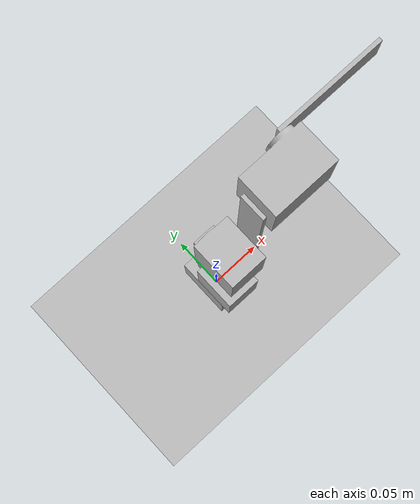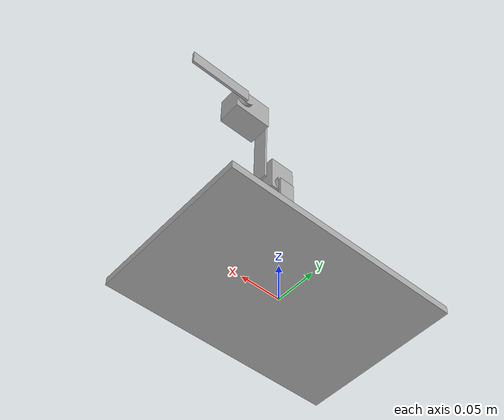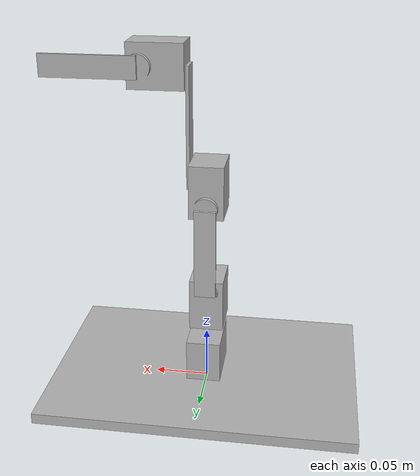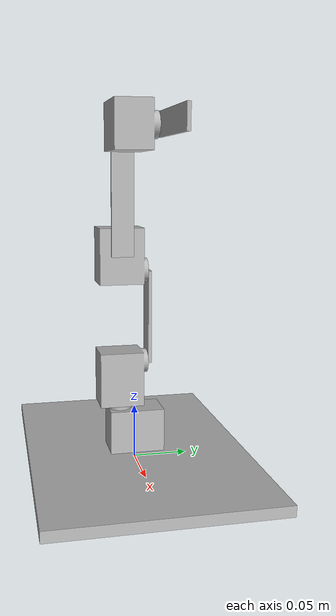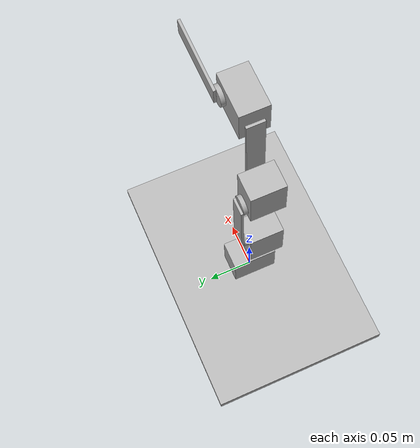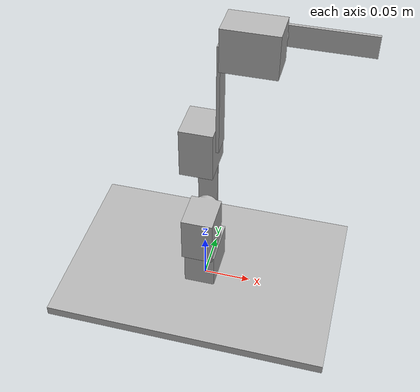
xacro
<?xml version="1.0" ?>
<robot name="murari" xmlns:xacro="http://www.ros.org/wiki/xacro">

<xacro:include filename="$(find murari_description)/urdf/materials.xacro" />
<xacro:include filename="$(find murari_description)/urdf/murari.trans" />
<xacro:include filename="$(find murari_description)/urdf/murari.gazebo" />
<link name="base_link">
  <inertial>
    <origin xyz="0.0 0.0 0.005" rpy="0 0 0"/>
    <mass value="4.553"/>
    <inertia ixx="0.015215" iyy="0.031947" izz="0.047086" ixy="0.0" iyz="0.0" ixz="0.0"/>
  </inertial>
  <visual>
    <origin xyz="0 0 0" rpy="0 0 0"/>
    <geometry>
      <mesh filename="package://murari_description/meshes/base_link.stl" scale="0.001 0.001 0.001"/>
    </geometry>
    <material name="silver"/>
  </visual>
  <collision>
    <origin xyz="0 0 0" rpy="0 0 0"/>
    <geometry>
      <mesh filename="package://murari_description/meshes/base_link.stl" scale="0.001 0.001 0.001"/>
    </geometry>
  </collision>
</link>

<link name="motor_1_1">
  <inertial>
    <origin xyz="-1.6587070383199578e-14 -0.0004037787837072097 0.02064893018810087" rpy="0 0 0"/>
    <mass value="0.5173202089100618"/>
    <inertia ixx="0.000182" iyy="0.000118" izz="0.000151" ixy="-0.0" iyz="5e-06" ixz="0.0"/>
  </inertial>
  <visual>
    <origin xyz="-0.0 -0.0 -0.01" rpy="0 0 0"/>
    <geometry>
      <mesh filename="package://murari_description/meshes/motor_1_1.stl" scale="0.001 0.001 0.001"/>
    </geometry>
    <material name="silver"/>
  </visual>
  <collision>
    <origin xyz="-0.0 -0.0 -0.01" rpy="0 0 0"/>
    <geometry>
      <mesh filename="package://murari_description/meshes/motor_1_1.stl" scale="0.001 0.001 0.001"/>
    </geometry>
  </collision>
</link>

<link name="motor_2_1">
  <inertial>
    <origin xyz="-1.6584913977793552e-14 0.0006489301881008689 0.02540377878370722" rpy="0 0 0"/>
    <mass value="0.5173202089100616"/>
    <inertia ixx="0.000182" iyy="0.000151" izz="0.000118" ixy="0.0" iyz="-5e-06" ixz="0.0"/>
  </inertial>
  <visual>
    <origin xyz="-0.0 0.014 -0.055" rpy="0 0 0"/>
    <geometry>
      <mesh filename="package://murari_description/meshes/motor_2_1.stl" scale="0.001 0.001 0.001"/>
    </geometry>
    <material name="silver"/>
  </visual>
  <collision>
    <origin xyz="-0.0 0.014 -0.055" rpy="0 0 0"/>
    <geometry>
      <mesh filename="package://murari_description/meshes/motor_2_1.stl" scale="0.001 0.001 0.001"/>
    </geometry>
  </collision>
</link>

<link name="link_1_1">
  <inertial>
    <origin xyz="-5.204748896376248e-18 0.001500000000000003 0.04249999999999998" rpy="0 0 0"/>
    <mass value="0.040035000596567984"/>
    <inertia ixx="2.4e-05" iyy="2.5e-05" izz="1e-06" ixy="-0.0" iyz="0.0" ixz="0.0"/>
  </inertial>
  <visual>
    <origin xyz="-0.0 -0.011 -0.094" rpy="0 0 0"/>
    <geometry>
      <mesh filename="package://murari_description/meshes/link_1_1.stl" scale="0.001 0.001 0.001"/>
    </geometry>
    <material name="silver"/>
  </visual>
  <collision>
    <origin xyz="-0.0 -0.011 -0.094" rpy="0 0 0"/>
    <geometry>
      <mesh filename="package://murari_description/meshes/link_1_1.stl" scale="0.001 0.001 0.001"/>
    </geometry>
  </collision>
</link>

<link name="link_2_1">
  <inertial>
    <origin xyz="0.001500371275078103 -1.734723475976807e-18 0.055000381476476345" rpy="0 0 0"/>
    <mass value="0.05181000000000001"/>
    <inertia ixx="5.4e-05" iyy="5.2e-05" izz="2e-06" ixy="-0.0" iyz="-0.0" ixz="0.0"/>
  </inertial>
  <visual>
    <origin xyz="-0.016009 0.014 -0.192986" rpy="0 0 0"/>
    <geometry>
      <mesh filename="package://murari_description/meshes/link_2_1.stl" scale="0.001 0.001 0.001"/>
    </geometry>
    <material name="silver"/>
  </visual>
  <collision>
    <origin xyz="-0.016009 0.014 -0.192986" rpy="0 0 0"/>
    <geometry>
      <mesh filename="package://murari_description/meshes/link_2_1.stl" scale="0.001 0.001 0.001"/>
    </geometry>
  </collision>
</link>

<link name="motor_4_1">
  <inertial>
    <origin xyz="0.025407642020382423 0.0005335648213273536 3.814764763521161e-07" rpy="0 0 0"/>
    <mass value="0.5173202089100627"/>
    <inertia ixx="0.000115" iyy="0.000175" izz="0.000156" ixy="-4e-06" iyz="0.0" ixz="-0.0"/>
  </inertial>
  <visual>
    <origin xyz="-0.019009 0.014 -0.302986" rpy="0 0 0"/>
    <geometry>
      <mesh filename="package://murari_description/meshes/motor_4_1.stl" scale="0.001 0.001 0.001"/>
    </geometry>
    <material name="silver"/>
  </visual>
  <collision>
    <origin xyz="-0.019009 0.014 -0.302986" rpy="0 0 0"/>
    <geometry>
      <mesh filename="package://murari_description/meshes/motor_4_1.stl" scale="0.001 0.001 0.001"/>
    </geometry>
  </collision>
</link>

<link name="link_3_1">
  <inertial>
    <origin xyz="0.04250044614644927 0.0014999999999999849 3.8147647668518303e-07" rpy="0 0 0"/>
    <mass value="0.040034999999999994"/>
    <inertia ixx="1e-06" iyy="2.5e-05" izz="2.4e-05" ixy="0.0" iyz="-0.0" ixz="-0.0"/>
  </inertial>
  <visual>
    <origin xyz="-0.05813 -0.007 -0.302986" rpy="0 0 0"/>
    <geometry>
      <mesh filename="package://murari_description/meshes/link_3_1.stl" scale="0.001 0.001 0.001"/>
    </geometry>
    <material name="silver"/>
  </visual>
  <collision>
    <origin xyz="-0.05813 -0.007 -0.302986" rpy="0 0 0"/>
    <geometry>
      <mesh filename="package://murari_description/meshes/link_3_1.stl" scale="0.001 0.001 0.001"/>
    </geometry>
  </collision>
</link>

<link name="motor_3_1">
  <inertial>
    <origin xyz="9.100994948067022e-06 -0.024351069811899127 0.013582995469259396" rpy="0 0 0"/>
    <mass value="0.5173202089100616"/>
    <inertia ixx="0.000182" iyy="0.000151" izz="0.000118" ixy="0.0" iyz="5e-06" ixz="-0.0"/>
  </inertial>
  <visual>
    <origin xyz="0.0 -0.011 -0.179" rpy="0 0 0"/>
    <geometry>
      <mesh filename="package://murari_description/meshes/motor_3_1.stl" scale="0.001 0.001 0.001"/>
    </geometry>
    <material name="silver"/>
  </visual>
  <collision>
    <origin xyz="0.0 -0.011 -0.179" rpy="0 0 0"/>
    <geometry>
      <mesh filename="package://murari_description/meshes/motor_3_1.stl" scale="0.001 0.001 0.001"/>
    </geometry>
  </collision>
</link>

<joint name="rigid_1" type="fixed">
  <origin xyz="0.0 0.0 0.01" rpy="0 0 0"/>
  <parent link="base_link"/>
  <child link="motor_1_1"/>
</joint>

<joint name="revolute_2" type="continuous">
  <origin xyz="0.0 -0.014 0.045" rpy="0 0 0"/>
  <parent link="motor_1_1"/>
  <child link="motor_2_1"/>
  <axis xyz="0.0 0.0 1.0"/>
</joint>

<joint name="revolute_3" type="continuous">
  <origin xyz="0.0 0.025 0.039" rpy="0 0 0"/>
  <parent link="motor_2_1"/>
  <child link="link_1_1"/>
  <axis xyz="0.0 1.0 0.0"/>
</joint>

<joint name="rigid_5" type="fixed">
  <origin xyz="0.016009 -0.025 0.013986" rpy="0 0 0"/>
  <parent link="motor_3_1"/>
  <child link="link_2_1"/>
</joint>

<joint name="rigid_6" type="fixed">
  <origin xyz="0.003 0.0 0.11" rpy="0 0 0"/>
  <parent link="link_2_1"/>
  <child link="motor_4_1"/>
</joint>

<joint name="revolute_7" type="continuous">
  <origin xyz="0.039121 0.021 0.0" rpy="0 0 0"/>
  <parent link="motor_4_1"/>
  <child link="link_3_1"/>
  <axis xyz="-0.0 1.0 0.0"/>
</joint>

<joint name="revolute_8" type="continuous">
  <origin xyz="-0.0 0.0 0.085" rpy="0 0 0"/>
  <parent link="link_1_1"/>
  <child link="motor_3_1"/>
  <axis xyz="0.0 -1.0 0.0"/>
</joint>

</robot>

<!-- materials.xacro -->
<robot name="murari" xmlns:xacro="http://www.ros.org/wiki/xacro" >

<material name="silver">
  <color rgba="0.700 0.700 0.700 1.000"/>
</material>

</robot>

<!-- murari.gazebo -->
<robot name="murari" xmlns:xacro="http://www.ros.org/wiki/xacro" >

<xacro:property name="body_color" value="Gazebo/Silver" />

<gazebo>
  <plugin name="control" filename="libgazebo_ros_control.so"/>
</gazebo>
<gazebo reference="base_link">
  <material>${body_color}</material>
  <mu1>0.2</mu1>
  <mu2>0.2</mu2>
  <selfCollide>true</selfCollide>
  <gravity>true</gravity>
</gazebo>

<gazebo reference="motor_1_1">
  <material>${body_color}</material>
  <mu1>0.2</mu1>
  <mu2>0.2</mu2>
  <selfCollide>true</selfCollide>
</gazebo>

<gazebo reference="motor_2_1">
  <material>${body_color}</material>
  <mu1>0.2</mu1>
  <mu2>0.2</mu2>
  <selfCollide>true</selfCollide>
</gazebo>

<gazebo reference="link_1_1">
  <material>${body_color}</material>
  <mu1>0.2</mu1>
  <mu2>0.2</mu2>
  <selfCollide>true</selfCollide>
</gazebo>

<gazebo reference="link_2_1">
  <material>${body_color}</material>
  <mu1>0.2</mu1>
  <mu2>0.2</mu2>
  <selfCollide>true</selfCollide>
</gazebo>

<gazebo reference="motor_4_1">
  <material>${body_color}</material>
  <mu1>0.2</mu1>
  <mu2>0.2</mu2>
  <selfCollide>true</selfCollide>
</gazebo>

<gazebo reference="link_3_1">
  <material>${body_color}</material>
  <mu1>0.2</mu1>
  <mu2>0.2</mu2>
  <selfCollide>true</selfCollide>
</gazebo>

<gazebo reference="motor_3_1">
  <material>${body_color}</material>
  <mu1>0.2</mu1>
  <mu2>0.2</mu2>
  <selfCollide>true</selfCollide>
</gazebo>

</robot>
